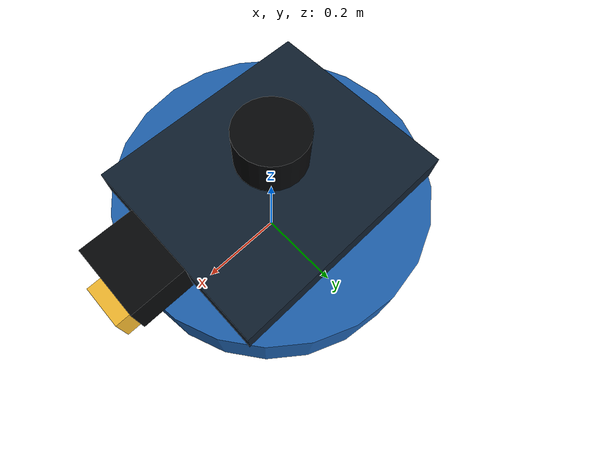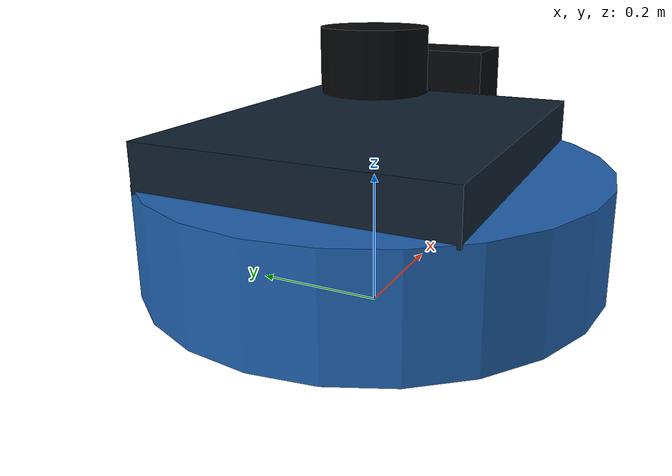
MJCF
<?xml version="1.0" encoding="utf-8"?>
<mujoco model="lingtu_omni_cart">
  <compiler angle="radian" autolimits="true"/>
  <!-- Attachable RobotPackages inherit session-owned MuJoCo options. -->
  <asset>
    <material name="cart_body" rgba="0.12 0.38 0.68 1"/>
    <material name="cart_top" rgba="0.06 0.12 0.18 1"/>
    <material name="cart_front" rgba="0.95 0.72 0.18 1"/>
    <material name="sensor_black" rgba="0.02 0.025 0.03 1"/>
    <material name="wheel_rubber" rgba="0.025 0.03 0.035 1"/>
  </asset>
  <worldbody>
    <body name="base_link" pos="0 0 0">
      <joint name="floating_base_joint" type="free"/>
      <geom name="cart_base" type="cylinder" size="0.34 0.08" pos="0 0 0.14"
            material="cart_body" contype="1" conaffinity="1" condim="3"
            friction="0.8 0.02 0.001" density="250"/>
      <geom name="cart_top_plate" type="box" size="0.26 0.22 0.035"
            pos="0 0 0.25" material="cart_top" contype="1" conaffinity="1"
            density="300"/>
      <geom name="cart_front_marker" type="box" size="0.13 0.045 0.04"
            pos="0.28 0 0.24" material="cart_front" contype="0" conaffinity="0"/>
      <geom name="front_camera_body" type="box" size="0.055 0.075 0.045"
            pos="0.32 0 0.31" material="sensor_black" contype="0" conaffinity="0"/>
      <camera name="front_camera" pos="0.38 0 0.34" xyaxes="0 -1 0 0 0 1" fovy="78"/>
      <site name="imu" pos="0 0 0.24" size="0.001"/>
      <geom name="front_support" type="sphere" size="0.045" pos="0.24 0 0.045"
            rgba="0.12 0.13 0.14 1" contype="1" conaffinity="1" condim="1" priority="2"
            density="200" group="3"/>
      <geom name="rear_support" type="sphere" size="0.045" pos="-0.24 0 0.045"
            rgba="0.12 0.13 0.14 1" contype="1" conaffinity="1" condim="1" priority="2"
            density="200" group="3"/>
      <body name="left_wheel_link" pos="0 0.34 0.11">
        <joint name="left_wheel_joint" type="hinge" axis="0 1 0" limited="false"
               damping="0.04" frictionloss="0.01" armature="0.01"/>
        <geom name="left_drive_wheel" type="cylinder" size="0.11 0.04"
              quat="0.70710678 0.70710678 0 0" material="wheel_rubber"
              contype="1" conaffinity="1" condim="3" friction="1.4 0.02 0.001"
              density="500" group="3"/>
      </body>
      <body name="right_wheel_link" pos="0 -0.34 0.11">
        <joint name="right_wheel_joint" type="hinge" axis="0 1 0" limited="false"
               damping="0.04" frictionloss="0.01" armature="0.01"/>
        <geom name="right_drive_wheel" type="cylinder" size="0.11 0.04"
              quat="0.70710678 0.70710678 0 0" material="wheel_rubber"
              contype="1" conaffinity="1" condim="3" friction="1.4 0.02 0.001"
              density="500" group="3"/>
      </body>
      <body name="lidar_link" pos="0 0 0.37">
        <geom name="lidar_mid360_visual" type="cylinder" size="0.075 0.045"
              rgba="0.02 0.025 0.03 1" contype="0" conaffinity="0"/>
        <site name="lidar_site" pos="0 0 0" size="0.001"/>
      </body>
    </body>
  </worldbody>
  <sensor>
    <framequat name="imu_orientation" objtype="site" objname="imu" noise="0.001"/>
    <gyro name="imu_angular_velocity" site="imu" noise="0.005" cutoff="34.9"/>
    <accelerometer name="imu_linear_acceleration" site="imu" noise="0.005" cutoff="157"/>
  </sensor>
  <actuator>
    <motor name="left_wheel_joint" joint="left_wheel_joint" gear="1"
           ctrllimited="true" ctrlrange="-12 12"/>
    <motor name="right_wheel_joint" joint="right_wheel_joint" gear="1"
           ctrllimited="true" ctrlrange="-12 12"/>
  </actuator>
</mujoco>
